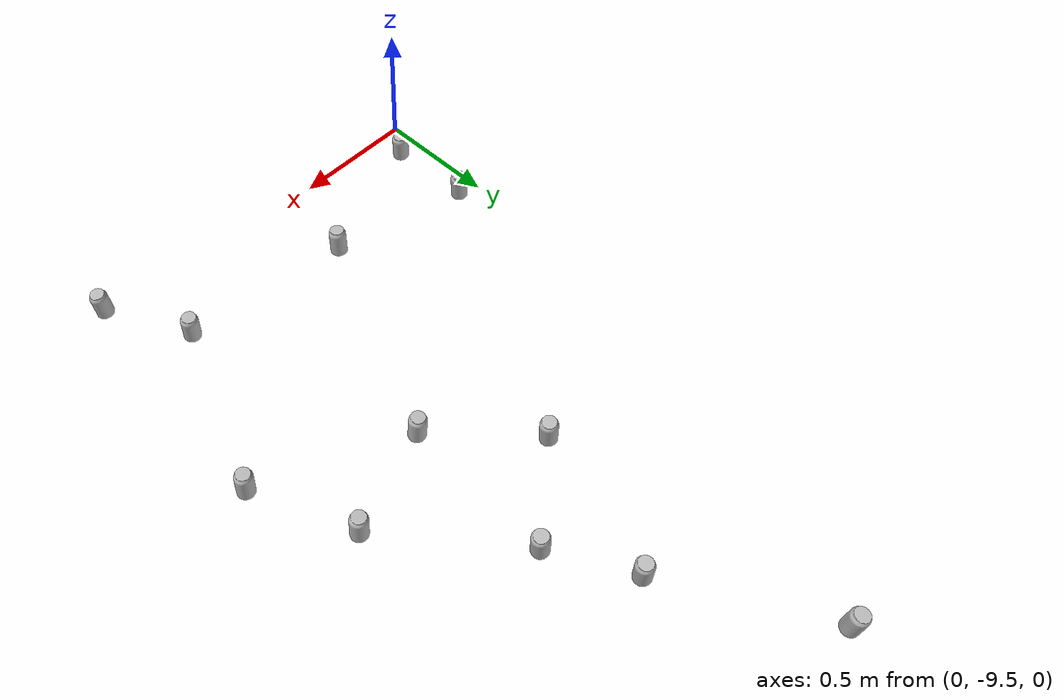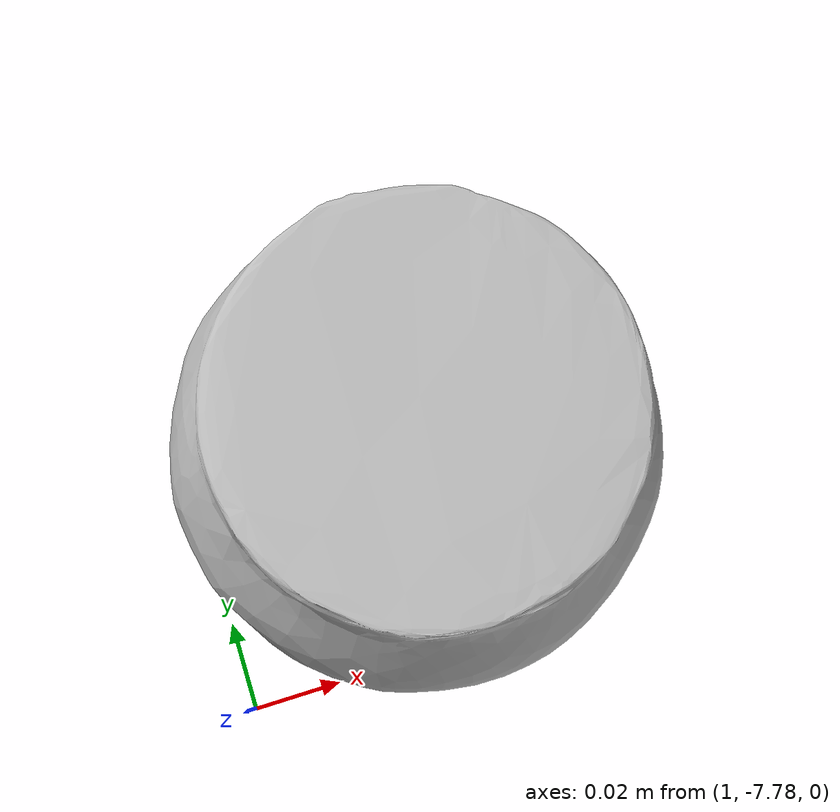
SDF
<sdf version="1.6">
 <world name="default">
  <model name="coke_can12">
   <link name="link">
    <inertial>
     <pose>0 0 0.06 0 -0 0</pose>
     <mass>0.39</mass>
     <inertia>
      <ixx>0.00055575</ixx>
      <ixy>0</ixy>
      <ixz>0</ixz>
      <iyy>0.00055575</iyy>
      <iyz>0</iyz>
      <izz>0.0001755</izz>
     </inertia>
    </inertial>
    <collision name="collision">
     <pose>0.003937 0.004724 -0.18 0 -0 0</pose>
     <geometry><mesh><uri>model://coke_can/meshes/coke_can.dae</uri></mesh></geometry>
     <surface>
      <friction><ode><mu>1</mu><mu2>1</mu2></ode></friction>
      <contact>
       <ode><kp>1e+07</kp><kd>1</kd><min_depth>0.001</min_depth><max_vel>0.1</max_vel></ode>
       <collide_bitmask>256</collide_bitmask>
      </contact>
     </surface>
    </collision>
    <visual name="visual">
     <pose>0.003937 0.004724 -0.18 0 -0 0</pose>
     <geometry><mesh><uri>model://coke_can/meshes/coke_can.dae</uri></mesh></geometry>
    </visual>
   </link>
   <pose>0.08723 -9.02848 -0.002659 -0.055131 0.007728 -1.39394</pose>
  </model>
  <model name="coke_can75">
   <link name="link">
    <inertial>
     <pose>0 0 0.06 0 -0 0</pose>
     <mass>0.39</mass>
     <inertia>
      <ixx>0.00055575</ixx>
      <ixy>0</ixy>
      <ixz>0</ixz>
      <iyy>0.00055575</iyy>
      <iyz>0</iyz>
      <izz>0.0001755</izz>
     </inertia>
    </inertial>
    <collision name="collision">
     <pose>0.003937 0.004724 -0.18 0 -0 0</pose>
     <geometry><mesh><uri>model://coke_can/meshes/coke_can.dae</uri></mesh></geometry>
     <surface>
      <friction><ode><mu>1</mu><mu2>1</mu2></ode></friction>
      <contact>
       <ode><kp>1e+07</kp><kd>1</kd><min_depth>0.001</min_depth><max_vel>0.1</max_vel></ode>
       <collide_bitmask>256</collide_bitmask>
      </contact>
     </surface>
    </collision>
    <visual name="visual">
     <pose>0.003937 0.004724 -0.18 0 -0 0</pose>
     <geometry><mesh><uri>model://coke_can/meshes/coke_can.dae</uri></mesh></geometry>
    </visual>
   </link>
   <pose>0.097293 -9.36609 -0.002659 -0.055097 0.007753 -0.804205</pose>
  </model>
  <model name="coke_can79">
   <link name="link">
    <inertial>
     <pose>0 0 0.06 0 -0 0</pose>
     <mass>0.39</mass>
     <inertia>
      <ixx>0.00055575</ixx>
      <ixy>0</ixy>
      <ixz>0</ixz>
      <iyy>0.00055575</iyy>
      <iyz>0</iyz>
      <izz>0.0001755</izz>
     </inertia>
    </inertial>
    <collision name="collision">
     <pose>0.003937 0.004724 -0.18 0 -0 0</pose>
     <geometry><mesh><uri>model://coke_can/meshes/coke_can.dae</uri></mesh></geometry>
     <surface>
      <friction><ode><mu>1</mu><mu2>1</mu2></ode></friction>
      <contact>
       <ode><kp>1e+07</kp><kd>1</kd><min_depth>0.001</min_depth><max_vel>0.1</max_vel></ode>
       <collide_bitmask>256</collide_bitmask>
      </contact>
     </surface>
    </collision>
    <visual name="visual">
     <pose>0.003937 0.004724 -0.18 0 -0 0</pose>
     <geometry><mesh><uri>model://coke_can/meshes/coke_can.dae</uri></mesh></geometry>
    </visual>
   </link>
   <pose>1.47227 -9.56299 -0.002659 -0.055103 0.007749 -1.73875</pose>
  </model>
  <model name="coke_can198">
   <link name="link">
    <inertial>
     <pose>0 0 0.06 0 -0 0</pose>
     <mass>0.39</mass>
     <inertia>
      <ixx>0.00055575</ixx>
      <ixy>0</ixy>
      <ixz>0</ixz>
      <iyy>0.00055575</iyy>
      <iyz>0</iyz>
      <izz>0.0001755</izz>
     </inertia>
    </inertial>
    <collision name="collision">
     <pose>0.003937 0.004724 -0.18 0 -0 0</pose>
     <geometry><mesh><uri>model://coke_can/meshes/coke_can.dae</uri></mesh></geometry>
     <surface>
      <friction><ode><mu>1</mu><mu2>1</mu2></ode></friction>
      <contact>
       <ode><kp>1e+07</kp><kd>1</kd><min_depth>0.001</min_depth><max_vel>0.1</max_vel></ode>
       <collide_bitmask>256</collide_bitmask>
      </contact>
     </surface>
    </collision>
    <visual name="visual">
     <pose>0.003937 0.004724 -0.18 0 -0 0</pose>
     <geometry><mesh><uri>model://coke_can/meshes/coke_can.dae</uri></mesh></geometry>
    </visual>
   </link>
   <pose>1.30678 -9.24045 -0.002659 -0.055136 0.007724 0.413435</pose>
  </model>
  <model name="coke_can381">
   <link name="link">
    <inertial>
     <pose>0 0 0.06 0 -0 0</pose>
     <mass>0.39</mass>
     <inertia>
      <ixx>0.00055575</ixx>
      <ixy>0</ixy>
      <ixz>0</ixz>
      <iyy>0.00055575</iyy>
      <iyz>0</iyz>
      <izz>0.0001755</izz>
     </inertia>
    </inertial>
    <collision name="collision">
     <pose>0.003937 0.004724 -0.18 0 -0 0</pose>
     <geometry><mesh><uri>model://coke_can/meshes/coke_can.dae</uri></mesh></geometry>
     <surface>
      <friction><ode><mu>1</mu><mu2>1</mu2></ode></friction>
      <contact>
       <ode><kp>1e+07</kp><kd>1</kd><min_depth>0.001</min_depth><max_vel>0.1</max_vel></ode>
       <collide_bitmask>256</collide_bitmask>
      </contact>
     </surface>
    </collision>
    <visual name="visual">
     <pose>0.003937 0.004724 -0.18 0 -0 0</pose>
     <geometry><mesh><uri>model://coke_can/meshes/coke_can.dae</uri></mesh></geometry>
    </visual>
   </link>
   <pose>1.04055 -7.75144 -0.002659 -0.055112 0.007741 -1.58241</pose>
  </model>
  <model name="coke_can432">
   <link name="link">
    <inertial>
     <pose>0 0 0.06 0 -0 0</pose>
     <mass>0.39</mass>
     <inertia>
      <ixx>0.00055575</ixx>
      <ixy>0</ixy>
      <ixz>0</ixz>
      <iyy>0.00055575</iyy>
      <iyz>0</iyz>
      <izz>0.0001755</izz>
     </inertia>
    </inertial>
    <collision name="collision">
     <pose>0.003937 0.004724 -0.18 0 -0 0</pose>
     <geometry><mesh><uri>model://coke_can/meshes/coke_can.dae</uri></mesh></geometry>
     <surface>
      <friction><ode><mu>1</mu><mu2>1</mu2></ode></friction>
      <contact>
       <ode><kp>1e+07</kp><kd>1</kd><min_depth>0.001</min_depth><max_vel>0.1</max_vel></ode>
       <collide_bitmask>256</collide_bitmask>
      </contact>
     </surface>
    </collision>
    <visual name="visual">
     <pose>0.003937 0.004724 -0.18 0 -0 0</pose>
     <geometry><mesh><uri>model://coke_can/meshes/coke_can.dae</uri></mesh></geometry>
    </visual>
   </link>
   <pose>0.563744 -6.90119 -0.002659 -0.055127 0.007731 0.541696</pose>
  </model>
  <model name="coke_can471">
   <link name="link">
    <inertial>
     <pose>0 0 0.06 0 -0 0</pose>
     <mass>0.39</mass>
     <inertia>
      <ixx>0.00055575</ixx>
      <ixy>0</ixy>
      <ixz>0</ixz>
      <iyy>0.00055575</iyy>
      <iyz>0</iyz>
      <izz>0.0001755</izz>
     </inertia>
    </inertial>
    <collision name="collision">
     <pose>0.003937 0.004724 -0.18 0 -0 0</pose>
     <geometry><mesh><uri>model://coke_can/meshes/coke_can.dae</uri></mesh></geometry>
     <surface>
      <friction><ode><mu>1</mu><mu2>1</mu2></ode></friction>
      <contact>
       <ode><kp>1e+07</kp><kd>1</kd><min_depth>0.001</min_depth><max_vel>0.1</max_vel></ode>
       <collide_bitmask>256</collide_bitmask>
      </contact>
     </surface>
    </collision>
    <visual name="visual">
     <pose>0.003937 0.004724 -0.18 0 -0 0</pose>
     <geometry><mesh><uri>model://coke_can/meshes/coke_can.dae</uri></mesh></geometry>
    </visual>
   </link>
   <pose>0.708073 -8.00315 -0.002659 -0.055105 0.007747 -1.72728</pose>
  </model>
  <model name="coke_can520">
   <link name="link">
    <inertial>
     <pose>0 0 0.06 0 -0 0</pose>
     <mass>0.39</mass>
     <inertia>
      <ixx>0.00055575</ixx>
      <ixy>0</ixy>
      <ixz>0</ixz>
      <iyy>0.00055575</iyy>
      <iyz>0</iyz>
      <izz>0.0001755</izz>
     </inertia>
    </inertial>
    <collision name="collision">
     <pose>0.003937 0.004724 -0.18 0 -0 0</pose>
     <geometry><mesh><uri>model://coke_can/meshes/coke_can.dae</uri></mesh></geometry>
     <surface>
      <friction><ode><mu>1</mu><mu2>1</mu2></ode></friction>
      <contact>
       <ode><kp>1e+07</kp><kd>1</kd><min_depth>0.001</min_depth><max_vel>0.1</max_vel></ode>
       <collide_bitmask>256</collide_bitmask>
      </contact>
     </surface>
    </collision>
    <visual name="visual">
     <pose>0.003937 0.004724 -0.18 0 -0 0</pose>
     <geometry><mesh><uri>model://coke_can/meshes/coke_can.dae</uri></mesh></geometry>
    </visual>
   </link>
   <pose>1.41188 -8.20945 -0.002659 -0.055132 0.007726 1.79921</pose>
  </model>
  <model name="coke_can553">
   <link name="link">
    <inertial>
     <pose>0 0 0.06 0 -0 0</pose>
     <mass>0.39</mass>
     <inertia>
      <ixx>0.00055575</ixx>
      <ixy>0</ixy>
      <ixz>0</ixz>
      <iyy>0.00055575</iyy>
      <iyz>0</iyz>
      <izz>0.0001755</izz>
     </inertia>
    </inertial>
    <collision name="collision">
     <pose>0.003937 0.004724 -0.18 0 -0 0</pose>
     <geometry><mesh><uri>model://coke_can/meshes/coke_can.dae</uri></mesh></geometry>
     <surface>
      <friction><ode><mu>1</mu><mu2>1</mu2></ode></friction>
      <contact>
       <ode><kp>1e+07</kp><kd>1</kd><min_depth>0.001</min_depth><max_vel>0.1</max_vel></ode>
       <collide_bitmask>256</collide_bitmask>
      </contact>
     </surface>
    </collision>
    <visual name="visual">
     <pose>0.003937 0.004724 -0.18 0 -0 0</pose>
     <geometry><mesh><uri>model://coke_can/meshes/coke_can.dae</uri></mesh></geometry>
    </visual>
   </link>
   <pose>1.01944 -8.33775 -0.002659 -0.055102 0.007749 1.39046</pose>
  </model>
  <model name="coke_can635">
   <link name="link">
    <inertial>
     <pose>0 0 0.06 0 -0 0</pose>
     <mass>0.39</mass>
     <inertia>
      <ixx>0.00055575</ixx>
      <ixy>0</ixy>
      <ixz>0</ixz>
      <iyy>0.00055575</iyy>
      <iyz>0</iyz>
      <izz>0.0001755</izz>
     </inertia>
    </inertial>
    <collision name="collision">
     <pose>0.003937 0.004724 -0.18 0 -0 0</pose>
     <geometry><mesh><uri>model://coke_can/meshes/coke_can.dae</uri></mesh></geometry>
     <surface>
      <friction><ode><mu>1</mu><mu2>1</mu2></ode></friction>
      <contact>
       <ode><kp>1e+07</kp><kd>1</kd><min_depth>0.001</min_depth><max_vel>0.1</max_vel></ode>
       <collide_bitmask>256</collide_bitmask>
      </contact>
     </surface>
    </collision>
    <visual name="visual">
     <pose>0.003937 0.004724 -0.18 0 -0 0</pose>
     <geometry><mesh><uri>model://coke_can/meshes/coke_can.dae</uri></mesh></geometry>
    </visual>
   </link>
   <pose>0.643479 -9.15735 -0.002659 -0.055087 0.007759 2.72991</pose>
  </model>
  <model name="coke_can756">
   <link name="link">
    <inertial>
     <pose>0 0 0.06 0 -0 0</pose>
     <mass>0.39</mass>
     <inertia>
      <ixx>0.00055575</ixx>
      <ixy>0</ixy>
      <ixz>0</ixz>
      <iyy>0.00055575</iyy>
      <iyz>0</iyz>
      <izz>0.0001755</izz>
     </inertia>
    </inertial>
    <collision name="collision">
     <pose>0.003937 0.004724 -0.18 0 -0 0</pose>
     <geometry><mesh><uri>model://coke_can/meshes/coke_can.dae</uri></mesh></geometry>
     <surface>
      <friction><ode><mu>1</mu><mu2>1</mu2></ode></friction>
      <contact>
       <ode><kp>1e+07</kp><kd>1</kd><min_depth>0.001</min_depth><max_vel>0.1</max_vel></ode>
       <collide_bitmask>256</collide_bitmask>
      </contact>
     </surface>
    </collision>
    <visual name="visual">
     <pose>0.003937 0.004724 -0.18 0 -0 0</pose>
     <geometry><mesh><uri>model://coke_can/meshes/coke_can.dae</uri></mesh></geometry>
    </visual>
   </link>
   <pose>1.57461 -8.59297 -0.002659 -0.055133 0.007727 1.86772</pose>
  </model>
  <model name="coke_can919">
   <link name="link">
    <inertial>
     <pose>0 0 0.06 0 -0 0</pose>
     <mass>0.39</mass>
     <inertia>
      <ixx>0.00055575</ixx>
      <ixy>0</ixy>
      <ixz>0</ixz>
      <iyy>0.00055575</iyy>
      <iyz>0</iyz>
      <izz>0.0001755</izz>
     </inertia>
    </inertial>
    <collision name="collision">
     <pose>0.003937 0.004724 -0.18 0 -0 0</pose>
     <geometry><mesh><uri>model://coke_can/meshes/coke_can.dae</uri></mesh></geometry>
     <surface>
      <friction><ode><mu>1</mu><mu2>1</mu2></ode></friction>
      <contact>
       <ode><kp>1e+07</kp><kd>1</kd><min_depth>0.001</min_depth><max_vel>0.1</max_vel></ode>
       <collide_bitmask>256</collide_bitmask>
      </contact>
     </surface>
    </collision>
    <visual name="visual">
     <pose>0.003937 0.004724 -0.18 0 -0 0</pose>
     <geometry><mesh><uri>model://coke_can/meshes/coke_can.dae</uri></mesh></geometry>
    </visual>
   </link>
   <pose>0.880834 -7.45993 -0.002659 -0.055109 0.007743 -1.63977</pose>
  </model>
 </world>
</sdf>
